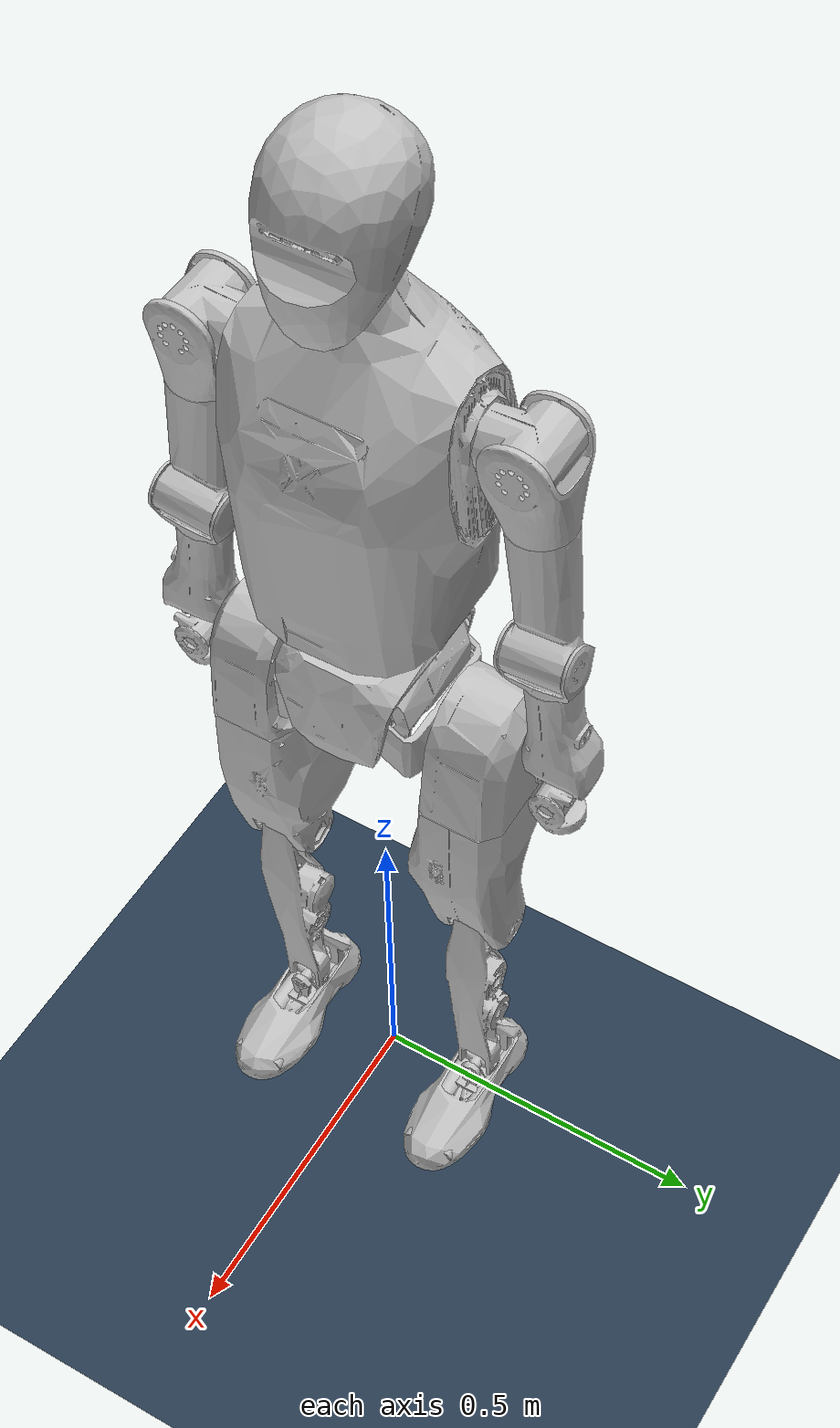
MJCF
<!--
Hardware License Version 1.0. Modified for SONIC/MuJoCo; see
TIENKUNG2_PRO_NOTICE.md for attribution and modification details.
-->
<mujoco model="tiangong2pro-urdf">
  <option gravity='0 0 -9.81' solver='PGS'/>
  <option integrator="implicitfast" />
  <size njmax="500" nconmax="100" />
  <compiler angle="radian" meshdir="./tienkung2_pro" eulerseq="zyx"/>
  <default>
    <joint type="hinge" limited="true" />
  </default>
  <asset>
    <texture type="skybox" builtin="gradient" rgb1="0.3 0.5 0.7" rgb2="0 0 0" width="512" height="512" />
    <texture name="texplane" type="2d" builtin="checker" rgb1=".2 .3 .4" rgb2=".1 0.15 0.2" width="512" height="512" mark="cross" markrgb=".8 .8 .8" />
    <material name="matplane" reflectance="0.3" texture="texplane" texrepeat="1 1" texuniform="true" />
    <mesh name="pelvis" file="pelvis.STL"/>
    <mesh name="hip_roll_l_link" file="hip_roll_l_link.STL"/>
    <mesh name="hip_pitch_l_link" file="hip_pitch_l_link.STL"/>
    <mesh name="hip_yaw_l_link" file="hip_yaw_l_link.STL"/>
    <mesh name="knee_pitch_l_link" file="knee_pitch_l_link.STL"/>
    <mesh name="ankle_pitch_l_link" file="ankle_pitch_l_link.STL"/>
    <mesh name="ankle_roll_l_link" file="ankle_roll_l_link.STL"/>
    <mesh name="hip_roll_r_link" file="hip_roll_r_link.STL"/>
    <mesh name="hip_pitch_r_link" file="hip_pitch_r_link.STL"/>
    <mesh name="hip_yaw_r_link" file="hip_yaw_r_link.STL"/>
    <mesh name="knee_pitch_r_link" file="knee_pitch_r_link.STL"/>
    <mesh name="ankle_pitch_r_link" file="ankle_pitch_r_link.STL"/>
    <mesh name="ankle_roll_r_link" file="ankle_roll_r_link.STL"/>
    <mesh name="body_yaw_link" file="body_yaw_link.STL"/>
    <mesh name="head_yaw_link" file="head_yaw_link.STL"/>
    <mesh name="head_pitch_link" file="head_pitch_link.STL"/>
    <mesh name="head_roll_link" file="head_roll_link.STL"/>
    <mesh name="shoulder_pitch_l_link" file="shoulder_pitch_l_link.STL"/>
    <mesh name="shoulder_roll_l_link" file="shoulder_roll_l_link.STL"/>
    <mesh name="shoulder_yaw_l_link" file="shoulder_yaw_l_link.STL"/>
    <mesh name="elbow_pitch_l_link" file="elbow_pitch_l_link.STL"/>
    <mesh name="elbow_yaw_l_link" file="elbow_yaw_l_link.STL"/>
    <mesh name="wrist_pitch_l_link" file="wrist_pitch_l_link.STL"/>
    <mesh name="wrist_roll_l_link" file="wrist_roll_l_link.STL"/>
    <mesh name="shoulder_pitch_r_link" file="shoulder_pitch_r_link.STL"/>
    <mesh name="shoulder_roll_r_link" file="shoulder_roll_r_link.STL"/>
    <mesh name="shoulder_yaw_r_link" file="shoulder_yaw_r_link.STL"/>
    <mesh name="elbow_pitch_r_link" file="elbow_pitch_r_link.STL"/>
    <mesh name="elbow_yaw_r_link" file="elbow_yaw_r_link.STL"/>
    <mesh name="wrist_pitch_r_link" file="wrist_pitch_r_link.STL"/>
    <mesh name="wrist_roll_r_link" file="wrist_roll_r_link.STL"/>
  </asset>

  <worldbody>
    <light directional="true" diffuse=".4 .4 .4" specular="0.1 0.1 0.1" pos="0 0 5.0" dir="0 0 -1" castshadow="false" />
    <light directional="true" diffuse=".6 .6 .6" specular="0.2 0.2 0.2" pos="0 0 4" dir="0 0 -1" />
    <geom name="floor" pos="0 0 0" size="100 100 1" type="plane" material="matplane" margin="0.001" contype="1" conaffinity="15" friction="1 0.005 0.0001" />

    <body name="Base_link" pos="0 0 1.0">
      <freejoint name="root" />
      <inertial pos="0.001537 0.000283 0.177608" quat="0.997803 1.42418e-06 0.0154267 -0.0644277" mass="5.7717" diaginertia="0.952918 0.922015 0.196947"/>
      <site name='imu' size='0.01' pos='0.0 0 0.0'/>
      <geom type="mesh" contype="0" conaffinity="0" group="1" density="0" rgba="0.752941 0.752941 0.752941 1" mesh="pelvis"/>
      <geom type="mesh" rgba="0.752941 0.752941 0.752941 1" mesh="pelvis"/>
      <body name="body_yaw_link">
        <inertial pos="-0.000568 0.00056 0.231488" mass="22.0" diaginertia="0.429034 0.379055 0.177142"/>
        <joint name="body_yaw_joint" pos="0 0 0" axis="0 0 1" range="-2.96706 3.14159" damping="10"/>
        <geom type="mesh" contype="0" conaffinity="0" group="1" density="0" rgba="0.752941 0.752941 0.752941 1" mesh="body_yaw_link"/>
        <geom type="mesh" rgba="0.752941 0.752941 0.752941 1" mesh="body_yaw_link"/>
        <geom pos="-0.002 0 0.56508" quat="1 0 0 0" type="mesh" contype="0" conaffinity="0" group="1" density="0" rgba="0.752941 0.752941 0.752941 1" mesh="head_yaw_link"/>
        <geom pos="-0.002 0 0.56508" quat="1 0 0 0" type="mesh" rgba="0.752941 0.752941 0.752941 1" mesh="head_yaw_link"/>
        <geom pos="0.01255 0 0.59548" quat="0.991445 0 0.130526 0" type="mesh" contype="0" conaffinity="0" group="1" density="0" rgba="0.752941 0.752941 0.752941 1" mesh="head_pitch_link"/>
        <geom pos="0.01255 0 0.59548" quat="0.991445 0 0.130526 0" type="mesh" rgba="0.752941 0.752941 0.752941 1" mesh="head_pitch_link"/>
        <geom pos="0.01255 0 0.59548" quat="0.991445 0 0.130526 0" type="mesh" contype="0" conaffinity="0" group="1" density="0" rgba="0.752941 0.752941 0.752941 1" mesh="head_roll_link"/>
        <geom pos="0.01255 0 0.59548" quat="0.991445 0 0.130526 0" type="mesh" rgba="0.752941 0.752941 0.752941 1" mesh="head_roll_link"/>
        <body name="shoulder_pitch_l_link" pos="0 0.1444 0.37712" quat="0.999048 0.0436192 0 0">
          <inertial pos="0.007494 0.064184 -2e-05" quat="-0.138986 0.691655 0.140135 0.694737" mass="1.0327" diaginertia="0.001247 0.00108933 0.00101366"/>
          <joint name="shoulder_pitch_l_joint" pos="0 0 0" axis="0 1 0" range="-2.96706 2.96706" damping="3"/>
          <geom type="mesh" contype="0" conaffinity="0" group="1" density="0" rgba="0.752941 0.752941 0.752941 1" mesh="shoulder_pitch_l_link"/>
          <geom type="mesh" rgba="0.752941 0.752941 0.752941 1" mesh="shoulder_pitch_l_link"/>
          <body name="shoulder_roll_l_link" pos="0 0.068 0">
            <inertial pos="0.002389 0.002259 -0.048236" quat="0.699313 0.0770166 0.101863 0.703317" mass="0.440997" diaginertia="0.00131352 0.00100748 0.000904004"/>
            <joint name="shoulder_roll_l_joint" pos="0 0 0" axis="1 0 0" range="-1.0472 1.8326" damping="1"/>
            <geom type="mesh" contype="0" conaffinity="0" group="1" density="0" rgba="0.752941 0.752941 0.752941 1" mesh="shoulder_roll_l_link"/>
            <geom type="mesh" rgba="0.752941 0.752941 0.752941 1" mesh="shoulder_roll_l_link"/>
            <body name="shoulder_yaw_l_link" pos="0 0 -0.1025">
              <inertial pos="0.008319 0.002686 -0.112525" quat="0.995878 0.0242664 -0.0546699 -0.0681906" mass="1.36503" diaginertia="0.00974687 0.00961144 0.00120969"/>
              <joint name="shoulder_yaw_l_joint" pos="0 0 0" axis="0 0 1" range="-2.96706 2.96706" damping="1"/>
              <geom type="mesh" contype="0" conaffinity="0" group="1" density="0" rgba="0.752941 0.752941 0.752941 1" mesh="shoulder_yaw_l_link"/>
              <geom type="mesh" rgba="0.752941 0.752941 0.752941 1" mesh="shoulder_yaw_l_link"/>
              <body name="elbow_pitch_l_link" pos="0.02 0 -0.1975">
                <inertial pos="-0.0734028 -0.00476129 -0.0851029" quat="0.34461 0.566056 0.620205 0.419727" mass="1.6269" diaginertia="0.0229036 0.0192193 0.0050614"/>
                <joint name="elbow_pitch_l_joint" pos="0 0 0" axis="0 1 0" range="-2.61799 0.261799" damping="1"/>
                <geom type="mesh" contype="0" conaffinity="0" group="1" density="0" rgba="0.752941 0.752941 0.752941 1" mesh="elbow_pitch_l_link"/>
                <geom type="mesh" rgba="0.752941 0.752941 0.752941 1" mesh="elbow_pitch_l_link"/>
                <body name="elbow_yaw_l_link" pos="-0.02 0 -0.0543">
                  <inertial pos="0.000158 0.001503 -0.069535" mass="0.986828" diaginertia="0.003108 0.003035 0.00058"/>
                  <joint name="elbow_yaw_l_joint" pos="0 0 0" axis="0 0 1" range="-2.96706 2.96706" damping="1"/>
                  <geom type="mesh" contype="0" conaffinity="0" group="1" density="0" rgba="0.752941 0.752941 0.752941 1" mesh="elbow_yaw_l_link"/>
                  <geom type="mesh" rgba="0.752941 0.752941 0.752941 1" mesh="elbow_yaw_l_link"/>
                  <body name="wrist_pitch_l_link" pos="0 0 -0.1887">
                    <inertial pos="0.005362 0.00064 -0.018812" mass="0.262007" diaginertia="7.1e-05 0.000112 0.000111"/>
                    <joint name="wrist_pitch_l_joint" pos="0 0 0" axis="0 1 0" range="-0.785398 1.0472" damping="0.5"/>
                    <geom type="mesh" contype="0" conaffinity="0" group="1" density="0" rgba="0.752941 0.752941 0.752941 1" mesh="wrist_pitch_l_link"/>
                    <geom type="mesh" rgba="0.752941 0.752941 0.752941 1" mesh="wrist_pitch_l_link"/>
                    <body name="wrist_roll_l_link" pos="0 0 -0.02">
                      <inertial pos="0.000801 8.4e-05 -0.029302" mass="0.131751" diaginertia="6.9e-05 0.000116 0.00011"/>
                      <joint name="wrist_roll_l_joint" pos="0 0 0" axis="1 0 0" range="-1.65806 1.309" damping="0.5"/>
                      <geom type="mesh" contype="0" conaffinity="0" group="1" density="0" rgba="0.752941 0.752941 0.752941 1" mesh="wrist_roll_l_link"/>
                      <geom type="mesh" rgba="0.752941 0.752941 0.752941 1" mesh="wrist_roll_l_link"/>
                    </body>
                  </body>
                </body>
              </body>
            </body>
          </body>
        </body>
        <body name="shoulder_pitch_r_link" pos="0 -0.1444 0.37712" quat="0.999048 -0.0436192 0 0">
          <inertial pos="0.007494 -0.064184 -2e-05" quat="0.138986 0.691655 -0.140135 0.694737" mass="1.0327" diaginertia="0.001247 0.00108933 0.00101366"/>
          <joint name="shoulder_pitch_r_joint" pos="0 0 0" axis="0 1 0" range="-2.96706 2.96706" damping="3"/>
          <geom type="mesh" contype="0" conaffinity="0" group="1" density="0" rgba="0.752941 0.752941 0.752941 1" mesh="shoulder_pitch_r_link"/>
          <geom type="mesh" rgba="0.752941 0.752941 0.752941 1" mesh="shoulder_pitch_r_link"/>
          <body name="shoulder_roll_r_link" pos="0 -0.068 0">
            <inertial pos="0.002389 -0.002259 -0.048236" quat="0.703317 0.101863 0.0770166 0.699313" mass="0.440997" diaginertia="0.00131352 0.00100748 0.000904004"/>
            <joint name="shoulder_roll_r_joint" pos="0 0 0" axis="1 0 0" range="-1.8326 1.0472" damping="1"/>
            <geom type="mesh" contype="0" conaffinity="0" group="1" density="0" rgba="0.752941 0.752941 0.752941 1" mesh="shoulder_roll_r_link"/>
            <geom type="mesh" rgba="0.752941 0.752941 0.752941 1" mesh="shoulder_roll_r_link"/>
            <body name="shoulder_yaw_r_link" pos="0 0 -0.1025">
              <inertial pos="0.008319 -0.002686 -0.112525" quat="0.995878 -0.0242664 -0.0546699 0.0681906" mass="1.36503" diaginertia="0.00974687 0.00961144 0.00120969"/>
              <joint name="shoulder_yaw_r_joint" pos="0 0 0" axis="0 0 1" range="-2.96706 2.96706" damping="1"/>
              <geom type="mesh" contype="0" conaffinity="0" group="1" density="0" rgba="0.752941 0.752941 0.752941 1" mesh="shoulder_yaw_r_link"/>
              <geom type="mesh" rgba="0.752941 0.752941 0.752941 1" mesh="shoulder_yaw_r_link"/>
              <body name="elbow_pitch_r_link" pos="0.02 0 -0.1975">
                <inertial pos="-0.073557 -0.00344802 -0.0891984" quat="0.41193 0.564624 0.59306 0.399741" mass="1.6269" diaginertia="0.0219573 0.0181552 0.00522881"/>
                <joint name="elbow_pitch_r_joint" pos="0 0 0" axis="0 1 0" range="-2.61799 0.261799" damping="1"/>
                <geom type="mesh" contype="0" conaffinity="0" group="1" density="0" rgba="0.752941 0.752941 0.752941 1" mesh="elbow_pitch_r_link"/>
                <geom type="mesh" rgba="0.752941 0.752941 0.752941 1" mesh="elbow_pitch_r_link"/>
                <body name="elbow_yaw_r_link" pos="-0.02 0 -0.0543">
                  <inertial pos="0.000158 -0.001503 -0.069535" mass="0.986828" diaginertia="0.003108 0.003035 0.00058"/>
                  <joint name="elbow_yaw_r_joint" pos="0 0 0" axis="0 0 1" range="-2.96706 2.96706" damping="1"/>
                  <geom type="mesh" contype="0" conaffinity="0" group="1" density="0" rgba="0.752941 0.752941 0.752941 1" mesh="elbow_yaw_r_link"/>
                  <geom type="mesh" rgba="0.752941 0.752941 0.752941 1" mesh="elbow_yaw_r_link"/>
                  <body name="wrist_pitch_r_link" pos="0 0 -0.1887">
                    <inertial pos="0.005362 -0.00064 -0.018812" mass="0.262007" diaginertia="7.1e-05 0.000112 0.000111"/>
                    <joint name="wrist_pitch_r_joint" pos="0 0 0" axis="0 1 0" range="-0.785398 1.0472" damping="0.5"/>
                    <geom type="mesh" contype="0" conaffinity="0" group="1" density="0" rgba="0.752941 0.752941 0.752941 1" mesh="wrist_pitch_r_link"/>
                    <geom type="mesh" rgba="0.752941 0.752941 0.752941 1" mesh="wrist_pitch_r_link"/>
                    <body name="wrist_roll_r_link" pos="0 0 -0.02">
                      <inertial pos="0.000801 -8.4e-05 -0.029302" mass="0.131751" diaginertia="6.9e-05 0.000116 0.00011"/>
                      <joint name="wrist_roll_r_joint" pos="0 0 0" axis="1 0 0" range="-1.309 1.65806" damping="0.5"/>
                      <geom type="mesh" contype="0" conaffinity="0" group="1" density="0" rgba="0.752941 0.752941 0.752941 1" mesh="wrist_roll_r_link"/>
                      <geom type="mesh" rgba="0.752941 0.752941 0.752941 1" mesh="wrist_roll_r_link"/>
                    </body>
                  </body>
                </body>
              </body>
            </body>
          </body>
        </body>
      </body>
      <body name="hip_roll_l_link" pos="0 0.028 -0.0857">
        <inertial pos="-0.001848 0.055849 -0.036017" quat="0.242041 0.661501 0.270146 0.656394" mass="0.672983" diaginertia="0.0035288 0.00296741 0.00101678"/>
        <joint name="hip_roll_l_joint" pos="0 0 0" axis="1 0 0" range="-0.785398 0.785398" damping="10"/>
        <geom type="mesh" contype="0" conaffinity="0" group="1" density="0" rgba="0.752941 0.752941 0.752941 1" mesh="hip_roll_l_link"/>
        <geom type="mesh" rgba="0.752941 0.752941 0.752941 1" mesh="hip_roll_l_link"/>
        <body name="hip_pitch_l_link" pos="0 0.122 -0.046">
          <inertial pos="0.001081 -8.8e-05 -0.013133" quat="0.703908 -0.0464278 -0.0604083 0.706193" mass="3.95191" diaginertia="0.0155995 0.0108766 0.00930186"/>
          <joint name="hip_pitch_l_joint" pos="0 0 0" axis="0 1 0" range="-2.79253 2.0944" damping="10"/>
          <geom type="mesh" contype="0" conaffinity="0" group="1" density="0" rgba="0.752941 0.752941 0.752941 1" mesh="hip_pitch_l_link"/>
          <geom type="mesh" rgba="0.752941 0.752941 0.752941 1" mesh="hip_pitch_l_link"/>
          <body name="hip_yaw_l_link" pos="0 -0.00015 -0.0987">
            <inertial pos="0.004102 -0.006542 -0.121068" quat="0.685682 -0.0129439 0.0149542 0.727633" mass="6.6708" diaginertia="0.0533758 0.0495596 0.0178685"/>
            <joint name="hip_yaw_l_joint" pos="0 0 0" axis="0 0 1" range="-1.0472 1.0472" damping="5"/>
            <geom type="mesh" contype="0" conaffinity="0" group="1" density="0" rgba="0.752941 0.752941 0.752941 1" mesh="hip_yaw_l_link"/>
            <geom type="mesh" rgba="0.752941 0.752941 0.752941 1" mesh="hip_yaw_l_link"/>
            <body name="knee_pitch_l_link" pos="0 0.00010715 -0.3013">
              <inertial pos="0.00018 0.001915 -0.178653" quat="0.741662 0.0200239 0.0403837 0.669257" mass="2.31269" diaginertia="0.0309319 0.0304477 0.00269639"/>
              <joint name="knee_pitch_l_joint" pos="0 0 0" axis="0 1 0" range="0 2.3911" damping="10"/>
              <geom type="mesh" contype="0" conaffinity="0" group="1" density="0" rgba="0.752941 0.752941 0.752941 1" mesh="knee_pitch_l_link"/>
              <geom type="mesh" rgba="0.752941 0.752941 0.752941 1" mesh="knee_pitch_l_link"/>
              <body name="ankle_pitch_l_link" pos="0 0 -0.4">
                <inertial pos="0 0 0" quat="0.5 0.5 -0.5 0.5" mass="0.111609" diaginertia="3.2e-05 1.8e-05 1.8e-05"/>
                <joint name="ankle_pitch_l_joint" pos="0 0 0" axis="0 1 0" range="-1.22173 0.523599" damping="2.5"/>
                <geom type="mesh" contype="0" conaffinity="0" group="1" density="0" rgba="0.752941 0.752941 0.752941 1" mesh="ankle_pitch_l_link"/>
                <geom type="mesh" rgba="0.752941 0.752941 0.752941 1" mesh="ankle_pitch_l_link"/>
                <body name="ankle_roll_l_link">
                  <inertial pos="0.021235 0 -0.032883" quat="0 0.747289 0 0.6645" mass="1.01738" diaginertia="0.0063132 0.006055 0.000954799"/>
                  <joint name="ankle_roll_l_joint" pos="0 0 0" axis="1 0 0" range="-0.523599 0.523599" damping="1.4"/>
                  <geom type="mesh" contype="0" conaffinity="0" group="1" density="0" rgba="0.752941 0.752941 0.752941 1" mesh="ankle_roll_l_link"/>
                  <geom name="toe1_left" size="0.015 0.115" pos="0.035 0.025 -0.042" quat="0.707105 0 0.707108 0" type="cylinder" rgba="0.752941 0.752941 0.752941 1"/>
                  <geom name="toe2_left" size="0.015 0.115" pos="0.035 -0.025 -0.042" quat="0.707105 0 0.707108 0" type="cylinder" rgba="0.752941 0.752941 0.752941 1"/>
                </body>
              </body>
            </body>
          </body>
        </body>
      </body>
      <body name="hip_roll_r_link" pos="0 -0.028 -0.0857">
        <inertial pos="-0.001848 -0.055849 -0.036017" quat="-0.242041 0.661501 -0.270146 0.656394" mass="0.672983" diaginertia="0.0035288 0.00296741 0.00101678"/>
        <joint name="hip_roll_r_joint" pos="0 0 0" axis="1 0 0" range="-0.785398 0.785398" damping="10"/>
        <geom type="mesh" contype="0" conaffinity="0" group="1" density="0" rgba="0.752941 0.752941 0.752941 1" mesh="hip_roll_r_link"/>
        <geom type="mesh" rgba="0.752941 0.752941 0.752941 1" mesh="hip_roll_r_link"/>
        <body name="hip_pitch_r_link" pos="0 -0.122 -0.046">
          <inertial pos="0.001081 8.8e-05 -0.013133" quat="0.706193 -0.0604083 -0.0464278 0.703908" mass="3.95191" diaginertia="0.0155995 0.0108766 0.00930186"/>
          <joint name="hip_pitch_r_joint" pos="0 0 0" axis="0 1 0" range="-2.79253 2.0944" damping="10"/>
          <geom type="mesh" contype="0" conaffinity="0" group="1" density="0" rgba="0.752941 0.752941 0.752941 1" mesh="hip_pitch_r_link"/>
          <geom type="mesh" rgba="0.752941 0.752941 0.752941 1" mesh="hip_pitch_r_link"/>
          <body name="hip_yaw_r_link" pos="0 0 -0.0987">
            <inertial pos="0.004102 0.006542 -0.121068" quat="0.727633 0.0149542 -0.0129439 0.685682" mass="6.6708" diaginertia="0.0533758 0.0495596 0.0178685"/>
            <joint name="hip_yaw_r_joint" pos="0 0 0" axis="0 0 1" range="-1.0472 1.0472" damping="5"/>
            <geom type="mesh" contype="0" conaffinity="0" group="1" density="0" rgba="0.752941 0.752941 0.752941 1" mesh="hip_yaw_r_link"/>
            <geom type="mesh" rgba="0.752941 0.752941 0.752941 1" mesh="hip_yaw_r_link"/>
            <body name="knee_pitch_r_link" pos="0 9.9938e-05 -0.3013">
              <inertial pos="0.00018 -0.001915 -0.178653" quat="0.669257 0.0403837 0.0200239 0.741662" mass="2.31269" diaginertia="0.0309319 0.0304477 0.00269639"/>
              <joint name="knee_pitch_r_joint" pos="0 0 0" axis="0 1 0" range="0 2.3911" damping="10"/>
              <geom type="mesh" contype="0" conaffinity="0" group="1" density="0" rgba="0.752941 0.752941 0.752941 1" mesh="knee_pitch_r_link"/>
              <geom type="mesh" rgba="0.752941 0.752941 0.752941 1" mesh="knee_pitch_r_link"/>
              <body name="ankle_pitch_r_link" pos="0 0.00099989 -0.4">
                <inertial pos="0 0 0" quat="0.5 0.5 -0.5 0.5" mass="0.111609" diaginertia="3.2e-05 1.8e-05 1.8e-05"/>
                <joint name="ankle_pitch_r_joint" pos="0 0 0" axis="0 1 0" range="-1.22173 0.523599" damping="2.5"/>
                <geom type="mesh" contype="0" conaffinity="0" group="1" density="0" rgba="0.752941 0.752941 0.752941 1" mesh="ankle_pitch_r_link"/>
                <geom type="mesh" rgba="0.752941 0.752941 0.752941 1" mesh="ankle_pitch_r_link"/>
                <body name="ankle_roll_r_link">
                  <inertial pos="0.021235 0 -0.032883" quat="0 0.747289 0 0.6645" mass="1.01738" diaginertia="0.0063132 0.006055 0.000954799"/>
                  <joint name="ankle_roll_r_joint" pos="0 0 0" axis="1 0 0" range="-0.523599 0.523599" damping="1.4"/>
                  <geom type="mesh" contype="0" conaffinity="0" group="1" density="0" rgba="0.752941 0.752941 0.752941 1" mesh="ankle_roll_r_link"/>
                  <geom name="toe1_right" size="0.015 0.115" pos="0.035 0.025 -0.042" quat="0.707105 0 0.707108 0" type="cylinder" rgba="0.752941 0.752941 0.752941 1"/>
                  <geom name="toe2_right" size="0.015 0.115" pos="0.035 -0.025 -0.042" quat="0.707105 0 0.707108 0" type="cylinder" rgba="0.752941 0.752941 0.752941 1"/>
                </body>
              </body>
            </body>
          </body>
        </body>
      </body>
    </body>
  </worldbody>

  <actuator>
    <position name="body_yaw_joint1" joint="body_yaw_joint" kp="200"/>

    <position name="hip_roll_l_joint1" joint="hip_roll_l_joint" kp="700"/>
    <position name="hip_pitch_l_joint1" joint="hip_pitch_l_joint" kp="700"/>
    <position name="hip_yaw_l_joint1" joint="hip_yaw_l_joint" kp="500"/>
    <position name="knee_pitch_l_joint1" joint="knee_pitch_l_joint" kp="700"/>
    <position name="ankle_pitch_l_joint1" joint="ankle_pitch_l_joint" kp="30"/>
    <position name="ankle_roll_l_joint1" joint="ankle_roll_l_joint" kp="15"/>

    <position name="hip_roll_r_joint1" joint="hip_roll_r_joint" kp="700"/>
    <position name="hip_pitch_r_joint1" joint="hip_pitch_r_joint" kp="700"/>
    <position name="hip_yaw_r_joint1" joint="hip_yaw_r_joint" kp="500"/>
    <position name="knee_pitch_r_joint1" joint="knee_pitch_r_joint" kp="700"/>
    <position name="ankle_pitch_r_joint1" joint="ankle_pitch_r_joint" kp="30"/>
    <position name="ankle_roll_r_joint1" joint="ankle_roll_r_joint" kp="15"/>

    <position name="shoulder_pitch_l_joint1" joint="shoulder_pitch_l_joint" kp="60"/>
    <position name="shoulder_roll_l_joint1" joint="shoulder_roll_l_joint" kp="20"/>
    <position name="shoulder_yaw_l_joint1" joint="shoulder_yaw_l_joint" kp="10"/>
    <position name="elbow_pitch_l_joint1" joint="elbow_pitch_l_joint" kp="10"/>
    <position name="elbow_yaw_l_joint1" joint="elbow_yaw_l_joint" kp="10"/>
    <position name="wrist_pitch_l_joint1" joint="wrist_pitch_l_joint" kp="5"/>
    <position name="wrist_roll_l_joint1" joint="wrist_roll_l_joint" kp="5"/>

    <position name="shoulder_pitch_r_joint1" joint="shoulder_pitch_r_joint" kp="60"/>
    <position name="shoulder_roll_r_joint1" joint="shoulder_roll_r_joint" kp="20"/>
    <position name="shoulder_yaw_r_joint1" joint="shoulder_yaw_r_joint" kp="10"/>
    <position name="elbow_pitch_r_joint1" joint="elbow_pitch_r_joint" kp="10"/>
    <position name="elbow_yaw_r_joint1" joint="elbow_yaw_r_joint" kp="10"/>
    <position name="wrist_pitch_r_joint1" joint="wrist_pitch_r_joint" kp="5"/>
    <position name="wrist_roll_r_joint1" joint="wrist_roll_r_joint" kp="5"/>

  </actuator>
  <sensor>
    <jointpos joint="body_yaw_joint" user="6"/>
    <jointpos joint="hip_roll_l_joint" user="6"/>
    <jointpos joint="hip_pitch_l_joint" user="6"/>
    <jointpos joint="hip_yaw_l_joint" user="6"/>
    <jointpos joint="knee_pitch_l_joint" user="6"/>
    <jointpos joint="ankle_pitch_l_joint" user="6"/>
    <jointpos joint="ankle_roll_l_joint" user="6"/>
    <jointpos joint="hip_roll_r_joint" user="6"/>
    <jointpos joint="hip_pitch_r_joint" user="6"/>
    <jointpos joint="hip_yaw_r_joint" user="6"/>
    <jointpos joint="knee_pitch_r_joint" user="6"/>
    <jointpos joint="ankle_pitch_r_joint" user="6"/>
    <jointpos joint="ankle_roll_r_joint" user="6"/>
    <jointpos joint="shoulder_pitch_l_joint" user="6"/>
    <jointpos joint="shoulder_roll_l_joint" user="6"/>
    <jointpos joint="shoulder_yaw_l_joint" user="6"/>
    <jointpos joint="elbow_pitch_l_joint" user="6"/>
    <jointpos joint="elbow_yaw_l_joint" user="6"/>
    <jointpos joint="wrist_pitch_l_joint" user="6"/>
    <jointpos joint="wrist_roll_l_joint" user="6"/>
    <jointpos joint="shoulder_pitch_r_joint" user="6"/>
    <jointpos joint="shoulder_roll_r_joint" user="6"/>
    <jointpos joint="shoulder_yaw_r_joint" user="6"/>
    <jointpos joint="elbow_pitch_r_joint" user="6"/>
    <jointpos joint="elbow_yaw_r_joint" user="6"/>
    <jointpos joint="wrist_pitch_r_joint" user="6"/>
    <jointpos joint="wrist_roll_r_joint" user="6"/>

    <jointvel joint="body_yaw_joint" user="6"/>
    <jointvel joint="hip_roll_l_joint" user="6"/>
    <jointvel joint="hip_pitch_l_joint" user="6"/>
    <jointvel joint="hip_yaw_l_joint" user="6"/>
    <jointvel joint="knee_pitch_l_joint" user="6"/>
    <jointvel joint="ankle_pitch_l_joint" user="6"/>
    <jointvel joint="ankle_roll_l_joint" user="6"/>
    <jointvel joint="hip_roll_r_joint" user="6"/>
    <jointvel joint="hip_pitch_r_joint" user="6"/>
    <jointvel joint="hip_yaw_r_joint" user="6"/>
    <jointvel joint="knee_pitch_r_joint" user="6"/>
    <jointvel joint="ankle_pitch_r_joint" user="6"/>
    <jointvel joint="ankle_roll_r_joint" user="6"/>
    <jointvel joint="shoulder_pitch_l_joint" user="6"/>
    <jointvel joint="shoulder_roll_l_joint" user="6"/>
    <jointvel joint="shoulder_yaw_l_joint" user="6"/>
    <jointvel joint="elbow_pitch_l_joint" user="6"/>
    <jointvel joint="elbow_yaw_l_joint" user="6"/>
    <jointvel joint="wrist_pitch_l_joint" user="6"/>
    <jointvel joint="wrist_roll_l_joint" user="6"/>
    <jointvel joint="shoulder_pitch_r_joint" user="6"/>
    <jointvel joint="shoulder_roll_r_joint" user="6"/>
    <jointvel joint="shoulder_yaw_r_joint" user="6"/>
    <jointvel joint="elbow_pitch_r_joint" user="6"/>
    <jointvel joint="elbow_yaw_r_joint" user="6"/>
    <jointvel joint="wrist_pitch_r_joint" user="6"/>
    <jointvel joint="wrist_roll_r_joint" user="6"/>

    <framequat name='orientation' objtype='site' noise='0.001' objname='imu'/>
    <framepos name='position' objtype='site' noise='0.001' objname='imu'/>
    <gyro name='angular-velocity' site='imu' noise='0.005' cutoff='34.9'/>
    <accelerometer name='linear-acceleration' site='imu' noise='0.002' cutoff='40'/>
    <velocimeter name='linear-velocity' site='imu' noise='0.001' cutoff='30'/>
  </sensor>
</mujoco>
